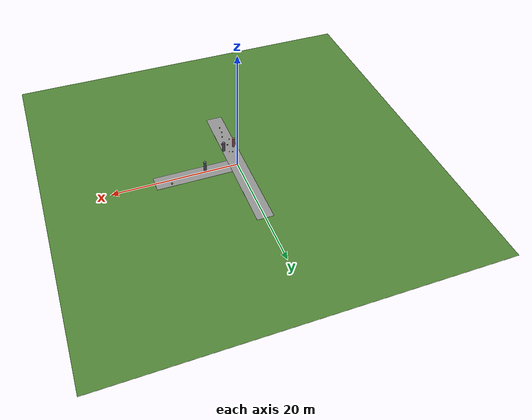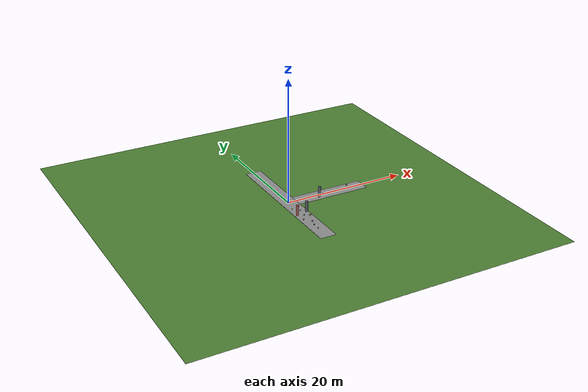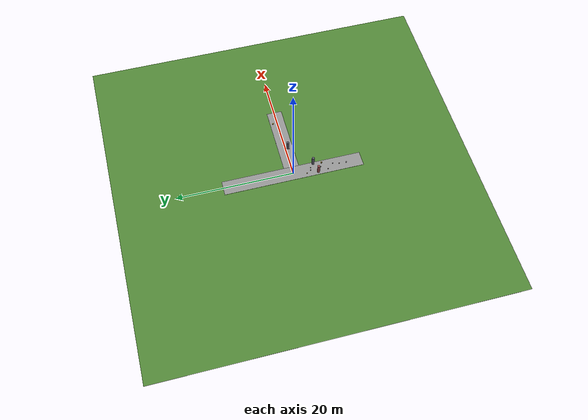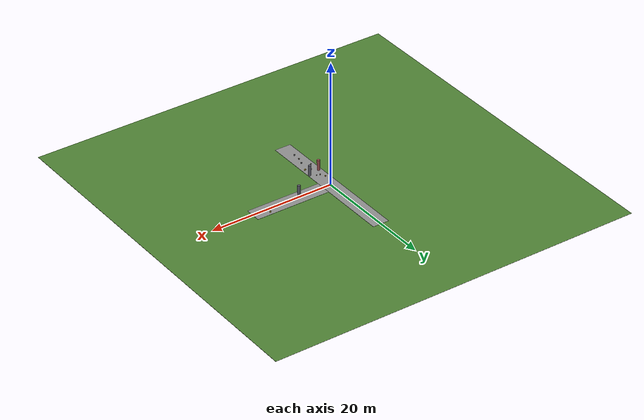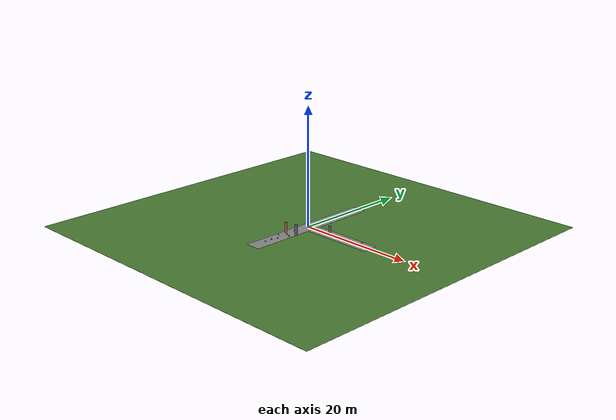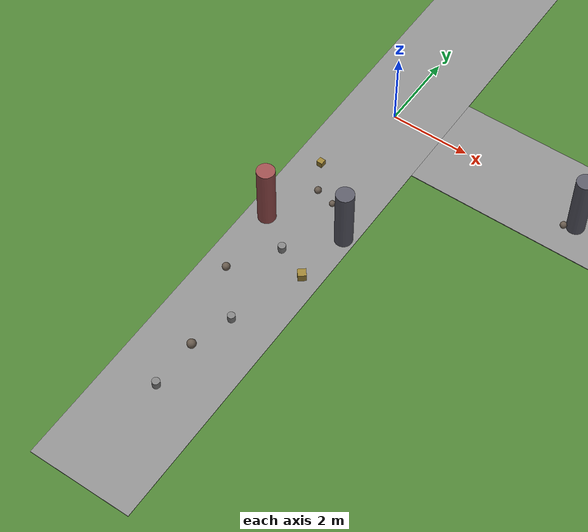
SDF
<?xml version="1.0" ?>
<sdf version="1.9">
  <world name="t_junction">
    <physics name="1ms" type="ignore">
      <max_step_size>0.001</max_step_size>
      <real_time_factor>1.0</real_time_factor>
    </physics>
    <plugin filename="gz-sim-physics-system" name="gz::sim::systems::Physics"/>
    <plugin filename="gz-sim-scene-broadcaster-system" name="gz::sim::systems::SceneBroadcaster"/>
    <plugin filename="gz-sim-sensors-system" name="gz::sim::systems::Sensors">
      <render_engine>ogre2</render_engine>
    </plugin>
    <plugin filename="gz-sim-user-commands-system" name="gz::sim::systems::UserCommands"/>

    <light type="directional" name="sun">
      <cast_shadows>true</cast_shadows>
      <pose>0 0 10 0 0 0</pose>
      <diffuse>0.8 0.8 0.8 1</diffuse>
      <specular>0.2 0.2 0.2 1</specular>
      <attenuation><range>1000</range><constant>0.9</constant><linear>0.01</linear><quadratic>0.001</quadratic></attenuation>
      <direction>-0.5 0.1 -0.9</direction>
    </light>

    <!-- 레이아웃 2: T자 교차형 -->

    <model name="ground_plane_visual">
      <static>true</static>
      <pose>0 0 -0.01 0 0 0</pose>
      <link name="link">
        <collision name="collision"><geometry><box><size>60.0 60.0 0.02</size></box></geometry></collision>
        <visual name="visual"><geometry><box><size>60.0 60.0 0.02</size></box></geometry>
          <material><ambient>0.3 0.5 0.2 1</ambient><diffuse>0.3 0.5 0.2 1</diffuse></material></visual>
      </link>
    </model>

    <model name="main_path">
      <static>true</static>
      <pose>0 0 0.01 0 0 0</pose>
      <link name="link">
        <collision name="collision"><geometry><box><size>2.6 24.0 0.02</size></box></geometry></collision>
        <visual name="visual"><geometry><box><size>2.6 24.0 0.02</size></box></geometry>
          <material><ambient>0.55 0.55 0.55 1</ambient><diffuse>0.55 0.55 0.55 1</diffuse></material></visual>
      </link>
    </model>

    <model name="branch_path">
      <static>true</static>
      <pose>7.3 0 0.01 0 0 0</pose>
      <link name="link">
        <collision name="collision"><geometry><box><size>12.0 2.6 0.02</size></box></geometry></collision>
        <visual name="visual"><geometry><box><size>12.0 2.6 0.02</size></box></geometry>
          <material><ambient>0.55 0.55 0.55 1</ambient><diffuse>0.55 0.55 0.55 1</diffuse></material></visual>
      </link>
    </model>

    <model name="junction_marker">
      <static>true</static>
      <pose>0 0 0.015 0 0 0</pose>
      <link name="link">
        <collision name="collision"><geometry><box><size>2.6 2.6 0.005</size></box></geometry></collision>
        <visual name="visual"><geometry><box><size>2.6 2.6 0.005</size></box></geometry>
          <material><ambient>0.65 0.6 0.3 1</ambient><diffuse>0.65 0.6 0.3 1</diffuse></material></visual>
      </link>
    </model>

    <model name="tjunc_obstacle_0">
      <static>true</static>
      <pose>10.86 0.79 0.12 0 0 0.80</pose>
      <link name="link">
        <collision name="collision"><geometry><box><size>0.20 0.20 0.20</size></box></geometry></collision>
        <visual name="visual"><geometry><box><size>0.20 0.20 0.20</size></box></geometry>
          <material><ambient>0.6 0.5 0.2 1</ambient><diffuse>0.6 0.5 0.2 1</diffuse></material></visual>
      </link>
    </model>

    <model name="tjunc_obstacle_1">
      <static>true</static>
      <pose>-0.69 -5.94 0.12 0 0 0</pose>
      <link name="link">
        <collision name="collision"><geometry><sphere><radius>0.09704589520758806</radius></sphere></geometry></collision>
        <visual name="visual"><geometry><sphere><radius>0.09704589520758806</radius></sphere></geometry>
          <material><ambient>0.4 0.35 0.3 1</ambient><diffuse>0.4 0.35 0.3 1</diffuse></material></visual>
      </link>
    </model>

    <model name="tjunc_obstacle_2">
      <static>true</static>
      <pose>-0.12 -9.24 0.11 0 0 0</pose>
      <link name="link">
        <collision name="collision"><geometry><cylinder><radius>0.09385427280021874</radius><length>0.18770854560043748</length></cylinder></geometry></collision>
        <visual name="visual"><geometry><cylinder><radius>0.09385427280021874</radius><length>0.18770854560043748</length></cylinder></geometry>
          <material><ambient>0.5 0.5 0.5 1</ambient><diffuse>0.5 0.5 0.5 1</diffuse></material></visual>
      </link>
    </model>

    <model name="tjunc_obstacle_3">
      <static>true</static>
      <pose>0.21 -6.97 0.11 0 0 0</pose>
      <link name="link">
        <collision name="collision"><geometry><cylinder><radius>0.09085482029532856</radius><length>0.1817096405906571</length></cylinder></geometry></collision>
        <visual name="visual"><geometry><cylinder><radius>0.09085482029532856</radius><length>0.1817096405906571</length></cylinder></geometry>
          <material><ambient>0.5 0.5 0.5 1</ambient><diffuse>0.5 0.5 0.5 1</diffuse></material></visual>
      </link>
    </model>

    <model name="tjunc_obstacle_4">
      <static>true</static>
      <pose>0.27 -3.10 0.10 0 0 0</pose>
      <link name="link">
        <collision name="collision"><geometry><sphere><radius>0.07721077220204688</radius></sphere></geometry></collision>
        <visual name="visual"><geometry><sphere><radius>0.07721077220204688</radius></sphere></geometry>
          <material><ambient>0.4 0.35 0.3 1</ambient><diffuse>0.4 0.35 0.3 1</diffuse></material></visual>
      </link>
    </model>

    <model name="tjunc_obstacle_5">
      <static>true</static>
      <pose>0.84 -5.16 0.12 0 0 0.69</pose>
      <link name="link">
        <collision name="collision"><geometry><box><size>0.20 0.20 0.20</size></box></geometry></collision>
        <visual name="visual"><geometry><box><size>0.20 0.20 0.20</size></box></geometry>
          <material><ambient>0.6 0.5 0.2 1</ambient><diffuse>0.6 0.5 0.2 1</diffuse></material></visual>
      </link>
    </model>

    <model name="tjunc_obstacle_6">
      <static>true</static>
      <pose>0.04 -4.80 0.11 0 0 0</pose>
      <link name="link">
        <collision name="collision"><geometry><cylinder><radius>0.09249206032723771</radius><length>0.18498412065447542</length></cylinder></geometry></collision>
        <visual name="visual"><geometry><cylinder><radius>0.09249206032723771</radius><length>0.18498412065447542</length></cylinder></geometry>
          <material><ambient>0.5 0.5 0.5 1</ambient><diffuse>0.5 0.5 0.5 1</diffuse></material></visual>
      </link>
    </model>

    <model name="tjunc_obstacle_7">
      <static>true</static>
      <pose>-0.09 -8.02 0.13 0 0 0</pose>
      <link name="link">
        <collision name="collision"><geometry><sphere><radius>0.10991796701620796</radius></sphere></geometry></collision>
        <visual name="visual"><geometry><sphere><radius>0.10991796701620796</radius></sphere></geometry>
          <material><ambient>0.4 0.35 0.3 1</ambient><diffuse>0.4 0.35 0.3 1</diffuse></material></visual>
      </link>
    </model>

    <model name="tjunc_obstacle_8">
      <static>true</static>
      <pose>4.97 -0.59 0.11 0 0 0</pose>
      <link name="link">
        <collision name="collision"><geometry><sphere><radius>0.08511639815599707</radius></sphere></geometry></collision>
        <visual name="visual"><geometry><sphere><radius>0.08511639815599707</radius></sphere></geometry>
          <material><ambient>0.4 0.35 0.3 1</ambient><diffuse>0.4 0.35 0.3 1</diffuse></material></visual>
      </link>
    </model>

    <model name="tjunc_obstacle_9">
      <static>true</static>
      <pose>-0.22 -2.97 0.11 0 0 0</pose>
      <link name="link">
        <collision name="collision"><geometry><sphere><radius>0.08852797360970771</radius></sphere></geometry></collision>
        <visual name="visual"><geometry><sphere><radius>0.08852797360970771</radius></sphere></geometry>
          <material><ambient>0.4 0.35 0.3 1</ambient><diffuse>0.4 0.35 0.3 1</diffuse></material></visual>
      </link>
    </model>

    <model name="tjunc_obstacle_10">
      <static>true</static>
      <pose>-0.63 -2.25 0.10 0 0 1.54</pose>
      <link name="link">
        <collision name="collision"><geometry><box><size>0.15 0.15 0.15</size></box></geometry></collision>
        <visual name="visual"><geometry><box><size>0.15 0.15 0.15</size></box></geometry>
          <material><ambient>0.6 0.5 0.2 1</ambient><diffuse>0.6 0.5 0.2 1</diffuse></material></visual>
      </link>
    </model>

    <model name="tjunc_obstacle_11">
      <static>true</static>
      <pose>6.09 0.15 0.10 0 0 0</pose>
      <link name="link">
        <collision name="collision"><geometry><cylinder><radius>0.08194715468025118</radius><length>0.16389430936050237</length></cylinder></geometry></collision>
        <visual name="visual"><geometry><cylinder><radius>0.08194715468025118</radius><length>0.16389430936050237</length></cylinder></geometry>
          <material><ambient>0.5 0.5 0.5 1</ambient><diffuse>0.5 0.5 0.5 1</diffuse></material></visual>
      </link>
    </model>

    <model name="tjunc_pedestrian_static_0">
      <static>true</static>
      <pose>5.20 -0.42 0.85 0 0 0</pose>
      <link name="link">
        <collision name="collision"><geometry><cylinder><radius>0.22</radius><length>1.7</length></cylinder></geometry></collision>
        <visual name="visual"><geometry><cylinder><radius>0.22</radius><length>1.7</length></cylinder></geometry>
          <material><ambient>0.35 0.35 0.4 1</ambient><diffuse>0.35 0.35 0.4 1</diffuse></material></visual>
      </link>
    </model>

    <model name="tjunc_pedestrian_static_1">
      <static>true</static>
      <pose>1.02 -3.75 0.85 0 0 0</pose>
      <link name="link">
        <collision name="collision"><geometry><cylinder><radius>0.22</radius><length>1.7</length></cylinder></geometry></collision>
        <visual name="visual"><geometry><cylinder><radius>0.22</radius><length>1.7</length></cylinder></geometry>
          <material><ambient>0.35 0.35 0.4 1</ambient><diffuse>0.35 0.35 0.4 1</diffuse></material></visual>
      </link>
    </model>

    <model name="tjunc_pedestrian_dynamic_0">
      <static>false</static>
      <pose>-0.80 -4.21 0.85 0 0 0</pose>
      <link name="link">
        <collision name="collision"><geometry><cylinder><radius>0.22</radius><length>1.7</length></cylinder></geometry></collision>
        <visual name="visual"><geometry><cylinder><radius>0.22</radius><length>1.7</length></cylinder></geometry>
          <material><ambient>0.6 0.3 0.3 1</ambient><diffuse>0.6 0.3 0.3 1</diffuse></material></visual>
      </link>
    </model>

  </world>
</sdf>
